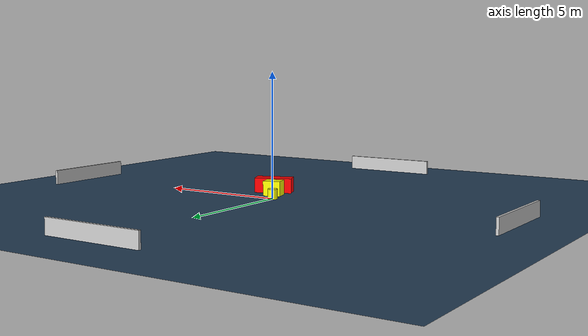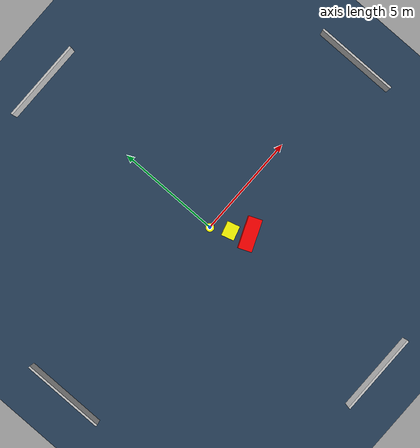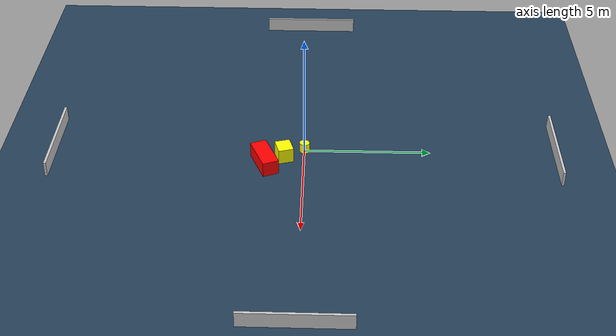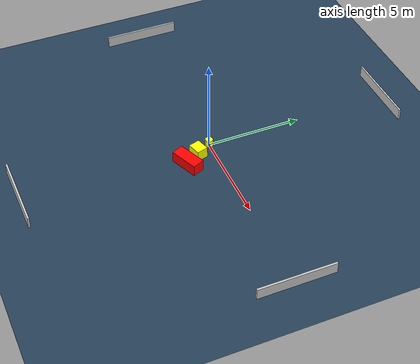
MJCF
<?xml version="1.0" ?>
<mujoco model="generated_environment">
  <option timestep="0.01" integrator="RK4" cone="elliptic"/>
  <default>
    <geom density="1"/>
  </default>
  <asset>
    <texture builtin="gradient" height="3072" name="skybox" rgb1="0.3 0.5 0.7" rgb2="0 0 0" type="skybox" width="512"/>
    <texture builtin="checker" height="300" name="groundplane" rgb1="0.2 0.3 0.4" rgb2="0.1 0.2 0.3" type="2d" width="300"/>
    <material name="groundplane" reflectance="0.2" texrepeat="5 5" texture="groundplane"/>
  </asset>
  <worldbody>
    <light dir="0 0 -1" directional="true" pos="0 0 1.5"/>
    <geom condim="3" friction="0.5 0.005 0.001" material="groundplane" name="floor" pos="0 0 0" size="0 0 0.05" type="plane"/>
    <body name="walls">
      <geom name="wall_1" condim="4" pos="-10.0 0.0 0.3" rgba="0.800000011920929 0.800000011920929 0.800000011920929 1.0" size="0.05 2.0 0.3" type="box"/>
      <geom name="wall_2" condim="4" pos="10.0 0.0 0.3" rgba="0.800000011920929 0.800000011920929 0.800000011920929 1.0" size="0.05 2.0 0.3" type="box"/>
      <geom name="wall_3" condim="4" pos="0.0 -10.0 0.3" rgba="0.800000011920929 0.800000011920929 0.800000011920929 1.0" size="2.0 0.05 0.3" type="box"/>
      <geom name="wall_4" condim="4" pos="0.0 10.0 0.3" rgba="0.800000011920929 0.800000011920929 0.800000011920929 1.0" size="2.0 0.05 0.3" type="box"/>
    </body>
    <body name="robot">
      <joint name="joint_x" type="slide" pos="0 0 0" axis="1 0 0"/>
      <joint name="joint_y" type="slide" pos="0 0 0" axis="0 1 0"/>
      <geom name="robot" type="cylinder" pos="0.0 0.0 0.2" size="0.2 0.2 0.0" mass="5.0" friction="1.0 0.005 0.0001" condim="4" rgba="1.0 1.0 0.0 1.0"/>
    </body>
    <body name="obstacle_1_movable">
      <geom name="obstacle_1_movable" condim="4" pos="0.49556633421541213 -0.7964843544735056 0.3" euler="0 0 16.129197727469187" friction="0.0 0.005 0.001" rgba="1.0 1.0 0.0 1.0" size="0.3496062716466246 0.30345435446439467 0.3" type="box" mass="0.1"/>
      <joint type="free"/>
    </body>
    <body name="obstacle_2_static">
      <geom name="obstacle_2_static" condim="4" pos="0.9634088269015608 -1.552373962478425 0.3" euler="0 0 22.47289159814485" friction="0.0 0.005 0.001" rgba="1.0 0.0 0.0 1.0" size="0.7608916092785787 0.32511433822296987 0.3" type="box"/>
    </body>
  </worldbody>
  <actuator>
    <motor name="actuator_x" joint="joint_x" gear="1" ctrlrange="-1 1"/>
    <motor name="actuator_y" joint="joint_y" gear="1" ctrlrange="-1 1"/>
  </actuator>
</mujoco>
